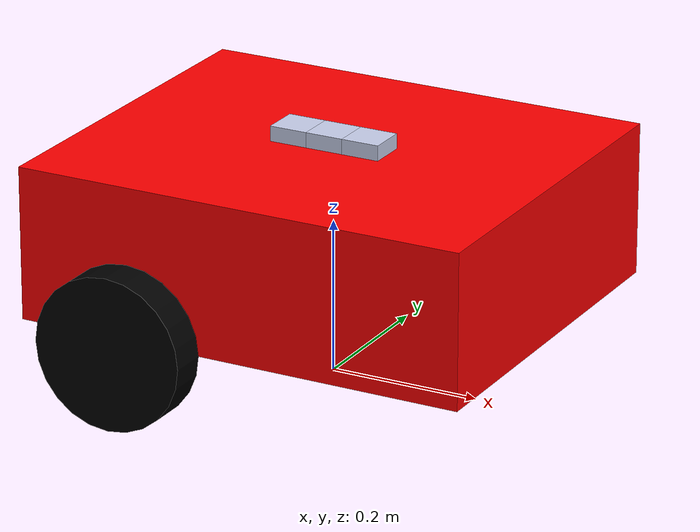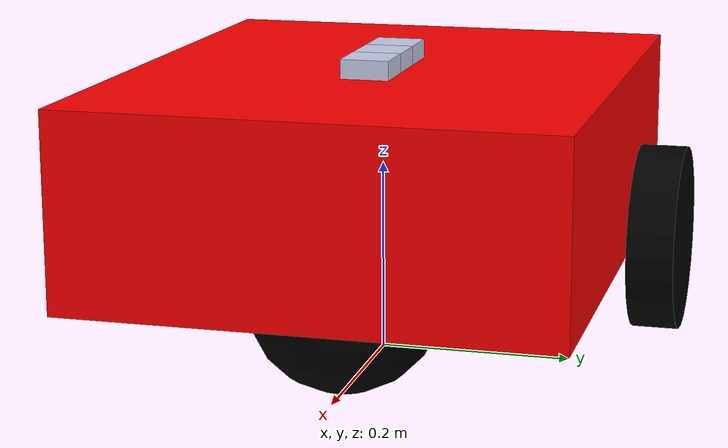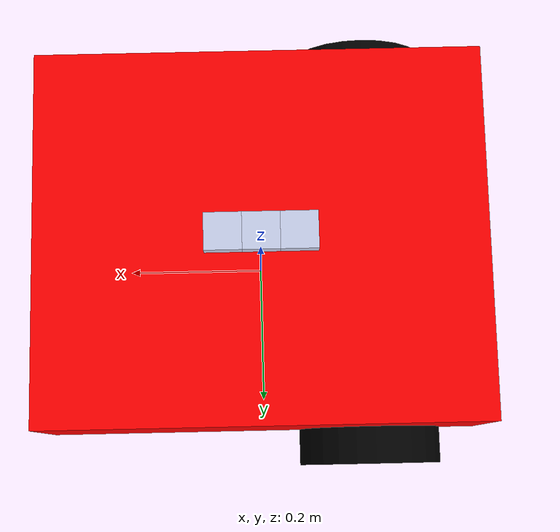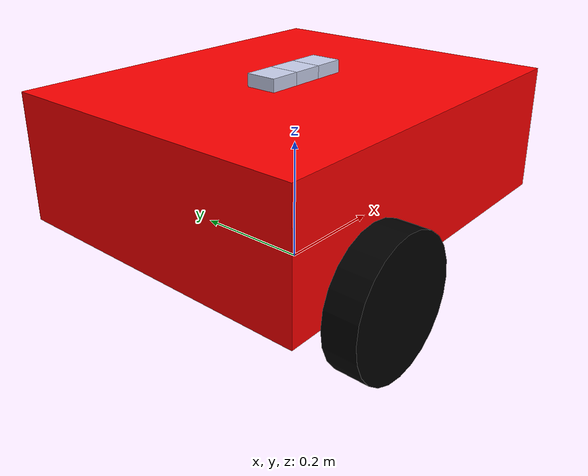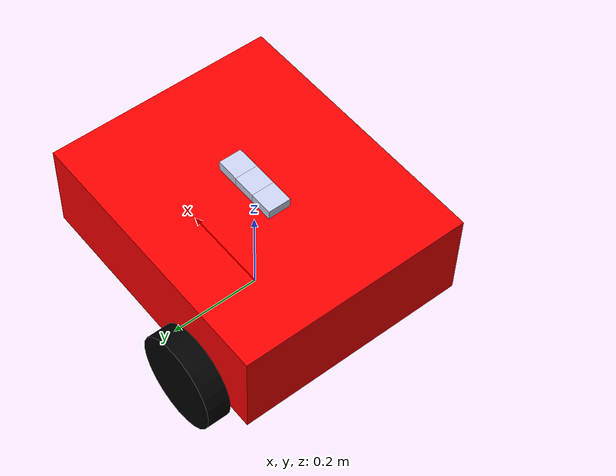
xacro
<?xml version="1.0"?>

<robot name="my_robot" xmlns:xacro="http://ros.org/wiki/xacro">

    <xacro:arg name="is_ignition" default="true" />
    <xacro:include filename="$(find imu_example)/urdf/robot_materials.xacro" />
    <xacro:include filename="$(find imu_example)/urdf/robot_gazebo.xacro" />
    <xacro:include filename="$(find imu_example)/urdf/robot_gazebo_controls.xacro"/>

    <link name="base_footprint" />

    <xacro:vehicle_body />

    <joint name="base_joint" type="fixed">
        <parent link="base_footprint"/>
        <child link="vehicle_body"/>
        <origin xyz="0 0 ${body_height / 2}"/>
    </joint>

    <xacro:wheel prefix="rear_right" />
    <xacro:wheel prefix="rear_left" />

    <xacro:caster_wheel prefix="front" />

    <joint name="rear_right_wheel_joint" type="continuous">
        <parent link="vehicle_body"/>
        <child link="rear_right_wheel"/>
        <origin xyz="${-(body_width / 4)} ${((body_depth / 2) + (wheel_length / 2))} 0" rpy="-${pi/2} 0 0"/>
        <axis xyz="0 0 1"/>
    </joint>

    <joint name="rear_left_wheel_joint" type="continuous">
        <parent link="vehicle_body"/>
        <child link="rear_left_wheel"/>
        <origin xyz="${-(body_width / 4)} ${-((body_depth / 2) + (wheel_length / 2))} 0" rpy="-${pi/2} 0 0"/>
        <axis xyz="0 0 1"/>
    </joint>

    <joint name="front_caster_wheel_joint" type="fixed">
        <parent link="vehicle_body"/>
        <child  link="front_caster_wheel"/>
        <origin xyz="${body_width / 4} 0 0"/>
    </joint>

    <xacro:imu prefix="imu1" />
    <xacro:imu prefix="imu2" />
    <xacro:imu prefix="imu3" />

    <joint name="imu_joint_1" type="fixed">
        <parent link="vehicle_body"/>
        <child link="imu1_link"/>
        <origin xyz="${0.05} 0 ${(body_height / 2) + 0.01 + wheel_radius}" rpy="0 0 0"/>
    </joint>
    <joint name="imu_joint_2" type="fixed">
        <parent link="vehicle_body"/>
        <child link="imu2_link"/>
        <origin xyz="0 0 ${(body_height / 2) + 0.01 + wheel_radius}"/>
    </joint>

    <joint name="imu_joint_3" type="fixed">
        <parent link="vehicle_body"/>
        <child link="imu3_link"/>
        <origin xyz="${-0.05} 0 ${(body_height / 2) + 0.01 + wheel_radius}"/>
    </joint>

</robot>

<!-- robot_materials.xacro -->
<robot name="my_robot" xmlns:xacro="http://ros.org/wiki/xacro">

    <!-- WHEEL PROPERTIES-->
    <xacro:property name="wheel_radius" value="0.1"/>
    <xacro:property name="wheel_length" value="0.05" />
    <xacro:property name="wheel_mass" value="0.5" />
    <xacro:property name="caster_wheel_radius" value="0.1" />
    <xacro:property name="caster_wheel_mass" value="0.5"/>

    <!-- Vehicle Body Parameters -->
    <xacro:property name="body_width"  value="0.6" />
    <xacro:property name="body_depth"  value="0.5" />
    <xacro:property name="body_height" value="0.2" />
    <xacro:property name="body_mass" value="2" />

    <xacro:macro name="wheel" params="prefix">
        <link name="${prefix}_wheel">
            <visual>
                <origin xyz="0 0 0"/>
                <geometry>
                    <cylinder radius="${wheel_radius}" length="${wheel_length}"/>
                </geometry>
                <material name="black"/>
            </visual>

            <collision>
                <origin xyz="0 0 0" rpy="0 0 0"/>
                <geometry>
                    <cylinder radius="${wheel_radius}" length="${wheel_length}"/>
                </geometry>
            </collision>

            <inertial>
                <origin xyz="0 0 0" rpy="0 0 0"/>
                <mass value="${wheel_mass}" />
                <inertia ixx="${(1 / 12) * ((3 * wheel_radius * wheel_radius) + (wheel_length * wheel_length))}"
                         iyy="${(1 / 12) * ((3 * wheel_radius * wheel_radius) + (wheel_length * wheel_length))}"
                         izz="${(1 / 2) * (wheel_radius * wheel_radius)}"
                         ixy = "0" ixz="0" iyz="0" iyx="0" izx="0" izy="0"
                />
            </inertial>
        </link>

    </xacro:macro>

    <xacro:macro name="caster_wheel" params="prefix">
        <link name="${prefix}_caster_wheel">
            <visual>
                <origin xyz="0 0 0"/>
                <geometry>
                    <sphere radius="${caster_wheel_radius}"/>
                </geometry>
                <material name="black"/>
            </visual>

            <collision>
                <origin xyz="0 0 0"/>
                <geometry>
                    <sphere radius="${caster_wheel_radius}"/>
                </geometry>
            </collision>

            <inertial>
                <origin xyz="0 0 0"/>
                <mass value="${caster_wheel_mass}" />
                <inertia ixx="${(2 / 5) * (caster_wheel_mass * caster_wheel_radius * caster_wheel_radius)}"
                         iyy="${(2 / 5) * (caster_wheel_mass * caster_wheel_radius * caster_wheel_radius)}"
                         izz="${(2 / 5) * (caster_wheel_mass * caster_wheel_radius * caster_wheel_radius)}"
                         ixy = "0" ixz="0" iyz="0" iyx="0" izx="0" izy="0"
                />
            </inertial>
        </link>

    </xacro:macro>

    <xacro:macro name="vehicle_body">
        <link name="vehicle_body">
            <visual>
                <origin xyz ="0 0 ${wheel_radius}" />
                <geometry>
                    <box size="${body_width} ${body_depth} ${body_height}"/>
                </geometry>
                <material name="red"/>
            </visual>

            <collision>
                <origin xyz ="0 0 ${wheel_radius}" />
                <geometry>
                     <box size="${body_width} ${body_depth} ${body_height}"/>
                </geometry>
            </collision>

            <inertial>
                <origin xyz="0 0 0" rpy="0 0 0"/>
                <mass value="${body_mass}"/>
                <inertia ixx="${(1 / 12) * body_mass * (body_height * body_height + body_depth * body_depth)}"
                        iyy="${(1 / 12) * body_mass * (body_height * body_height + body_width * body_width)}"
                        izz="${(1 / 12) * body_mass * (body_width * body_width + body_depth * body_depth)}"
                        ixy = "0" ixz="0" iyz="0" iyx="0" izx="0" izy="0"
                />
            </inertial>
        </link>
    </xacro:macro>

    <xacro:macro name="imu" params="prefix">
        <link name="${prefix}_link">
            <visual>
                <origin xyz="0 0 0"/>
                <geometry>
                    <box size="0.05 0.05 0.02"/>
                </geometry>
                <material name="silver" />
            </visual>

            <collision>
                <origin xyz="0 0 0"/>
                <geometry>
                    <box size="0.05 0.05 0.02"/>
                </geometry>
            </collision>

            <inertial>
                <origin xyz="0 0 0" rpy="0 0 0" />
                <mass value="0.1" />
                <inertia ixx="${(1 / 12) * 0.4 * (0.05 * 0.05 + 0.02 * 0.02)}"
                         iyy="${(1 / 12) * 0.4 * (0.05 * 0.05 + 0.02 * 0.02)}"
                         izz="${(1 / 12) * 0.4 * (0.05 * 0.05 + 0.05 * 0.05)}"
                         ixy="0" ixz="0" iyz="0" iyx="0" izx="0" izy="0"
                />
            </inertial>
        </link>

        <gazebo reference="${prefix}_link">
            <sensor name="${prefix}" type="imu">
                <always_on>true</always_on>
                <update_rate>100</update_rate>
                <gz_frame_id>${prefix}_link</gz_frame_id>
                <topic>${prefix}</topic>
            </sensor>
        </gazebo>

    </xacro:macro>

    <material name="blue">
        <color rgba="0 0 1 1"/>
    </material>

    <material name="black">
        <color rgba="0 0 0 1"/>
    </material>

    <material name="silver">
        <color rgba="0.79 0.82 0.93 1" />
    </material>

    <material name="red">
        <color rgba="1 0 0 1" />
    </material>

</robot>
